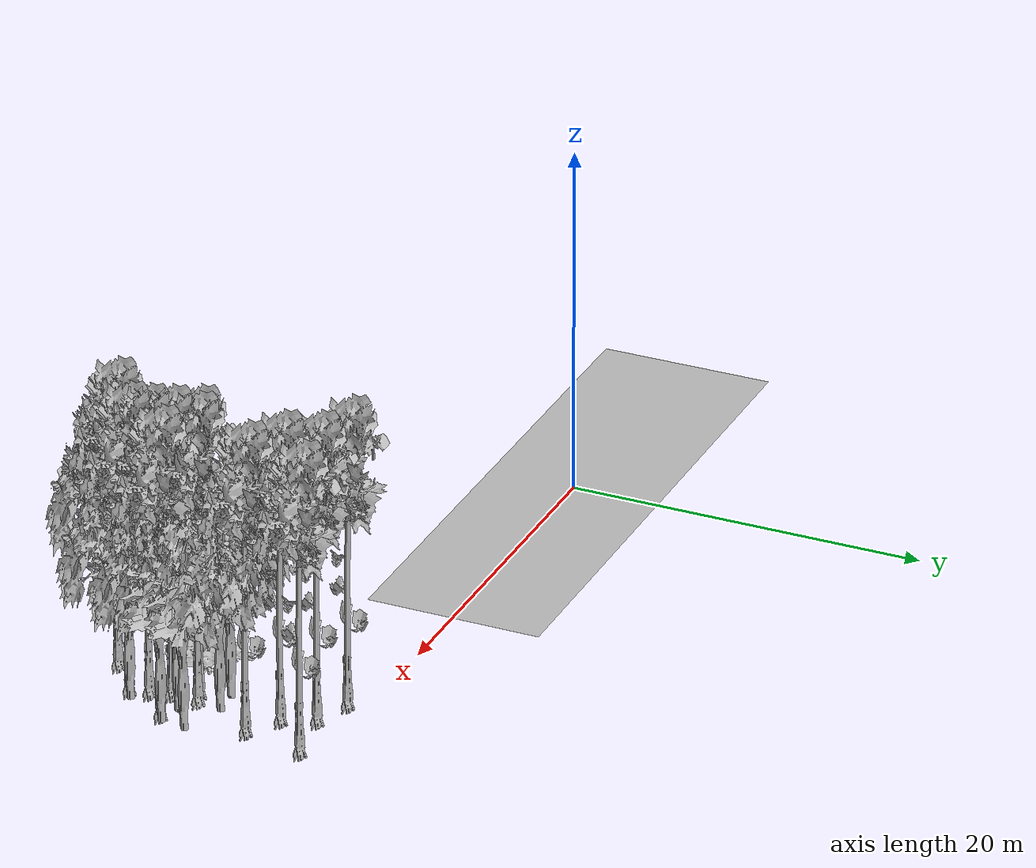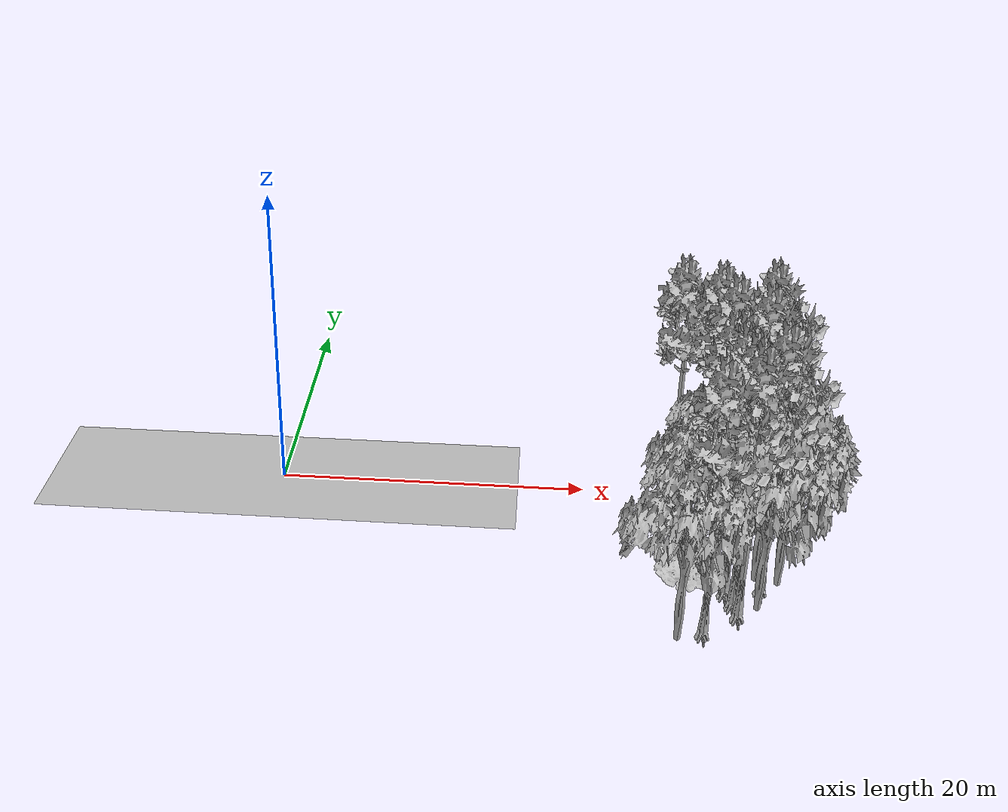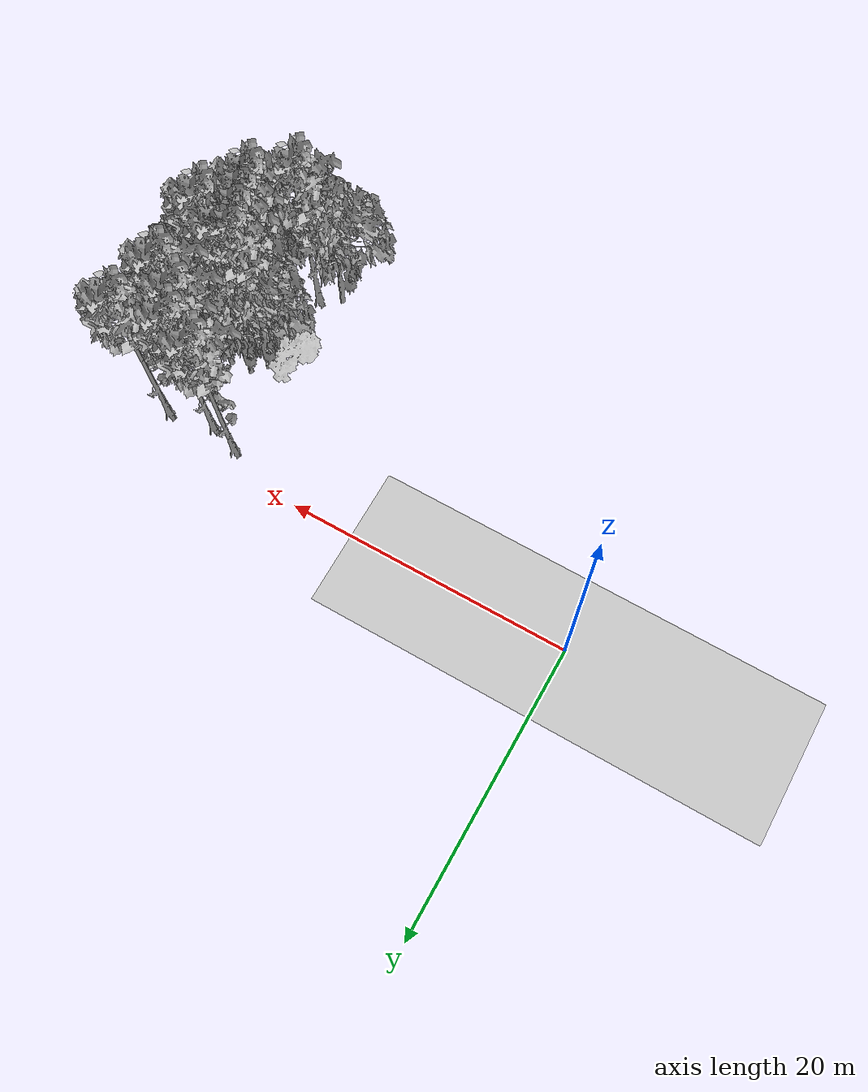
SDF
<sdf version="1.7">
 <world name="default">
  <model name="ground_plane">
   <static>1</static>
   <link name="link">
    <collision name="collision">
     <pose>-50 0 0 0 -0 0</pose>
     <geometry><plane><normal>0 0 1</normal><size>100 100</size></plane></geometry>
     <surface><contact><ode><min_depth>0.01</min_depth><max_vel>0</max_vel></ode></contact></surface>
    </collision>
    <visual name="grass">
     <cast_shadows>0</cast_shadows>
     <geometry>
      <mesh>
       <scale>0.5814285714285714 0.18142857142857144 0.1</scale>
       <uri>file://grass_plane/meshes/grass_plane.dae</uri>
      </mesh>
     </geometry>
    </visual>
   </link>
  </model>
  <model name="Tree 3">
   <static>1</static>
   <pose>28.816578307401187 -12.275336711005055 0 1.57079 -0 0</pose>
   <link name="link">
    <collision name="collision">
     <geometry><mesh><scale>3.5 5 3.5</scale><uri>model://tree_9/meshes/tree_9.obj</uri></mesh></geometry>
    </collision>
    <visual name="visual">
     <geometry><mesh><scale>3.5 5 3.5</scale><uri>model://tree_9/meshes/tree_9.obj</uri></mesh></geometry>
    </visual>
   </link>
  </model>
  <model name="Tree 67">
   <static>1</static>
   <pose>25.736149651739538 -9.30305322715385 0 1.57079 -0 0</pose>
   <link name="link">
    <collision name="collision">
     <geometry><mesh><scale>4 2.5 4</scale><uri>model://tree_1/meshes/tree_1.obj</uri></mesh></geometry>
    </collision>
    <visual name="visual">
     <geometry><mesh><scale>4 2.5 4</scale><uri>model://tree_1/meshes/tree_1.obj</uri></mesh></geometry>
    </visual>
   </link>
  </model>
  <model name="Tree 99">
   <static>1</static>
   <pose>27.711229154028274 -2.124093726607624 0 1.57079 -0 0</pose>
   <link name="link">
    <collision name="collision">
     <geometry><mesh><scale>3.5 5 3.5</scale><uri>model://tree_9/meshes/tree_9.obj</uri></mesh></geometry>
    </collision>
    <visual name="visual">
     <geometry><mesh><scale>3.5 5 3.5</scale><uri>model://tree_9/meshes/tree_9.obj</uri></mesh></geometry>
    </visual>
   </link>
  </model>
  <model name="Tree 140">
   <static>1</static>
   <pose>25.594275652812357 -1.39752343995983 0 1.57079 -0 0</pose>
   <link name="link">
    <collision name="collision">
     <geometry><mesh><scale>3.5 5 3.5</scale><uri>model://tree_9/meshes/tree_9.obj</uri></mesh></geometry>
    </collision>
    <visual name="visual">
     <geometry><mesh><scale>3.5 5 3.5</scale><uri>model://tree_9/meshes/tree_9.obj</uri></mesh></geometry>
    </visual>
   </link>
  </model>
  <model name="Tree 184">
   <static>1</static>
   <pose>25.086450924936756 -14.716954587017216 0 1.57079 -0 0</pose>
   <link name="link">
    <collision name="collision">
     <geometry><mesh><scale>3.5 5 3.5</scale><uri>model://tree_2/meshes/tree_2.obj</uri></mesh></geometry>
    </collision>
    <visual name="visual">
     <geometry><mesh><scale>3.5 5 3.5</scale><uri>model://tree_2/meshes/tree_2.obj</uri></mesh></geometry>
    </visual>
   </link>
  </model>
  <model name="Tree 205">
   <static>1</static>
   <pose>31.391043474435094 -9.125467354164403 0 1.57079 -0 0</pose>
   <link name="link">
    <collision name="collision">
     <geometry><mesh><scale>3.5 5 3.5</scale><uri>model://tree_2/meshes/tree_2.obj</uri></mesh></geometry>
    </collision>
    <visual name="visual">
     <geometry><mesh><scale>3.5 5 3.5</scale><uri>model://tree_2/meshes/tree_2.obj</uri></mesh></geometry>
    </visual>
   </link>
  </model>
  <model name="Tree 215">
   <static>1</static>
   <pose>26.874081245217113 -7.8629637072046075 0 1.57079 -0 0</pose>
   <link name="link">
    <collision name="collision">
     <geometry><mesh><scale>3.5 5 3.5</scale><uri>model://tree_2/meshes/tree_2.obj</uri></mesh></geometry>
    </collision>
    <visual name="visual">
     <geometry><mesh><scale>3.5 5 3.5</scale><uri>model://tree_2/meshes/tree_2.obj</uri></mesh></geometry>
    </visual>
   </link>
  </model>
  <model name="Tree 234">
   <static>1</static>
   <pose>27.707507237580117 -6.956825210854053 0 1.57079 -0 0</pose>
   <link name="link">
    <collision name="collision">
     <geometry><mesh><scale>3.5 5 3.5</scale><uri>model://tree_2/meshes/tree_2.obj</uri></mesh></geometry>
    </collision>
    <visual name="visual">
     <geometry><mesh><scale>3.5 5 3.5</scale><uri>model://tree_2/meshes/tree_2.obj</uri></mesh></geometry>
    </visual>
   </link>
  </model>
  <model name="Tree 244">
   <static>1</static>
   <pose>29.920235837777838 -11.625635448905513 0 1.57079 -0 0</pose>
   <link name="link">
    <collision name="collision">
     <geometry><mesh><scale>3.5 5 3.5</scale><uri>model://tree_2/meshes/tree_2.obj</uri></mesh></geometry>
    </collision>
    <visual name="visual">
     <geometry><mesh><scale>3.5 5 3.5</scale><uri>model://tree_2/meshes/tree_2.obj</uri></mesh></geometry>
    </visual>
   </link>
  </model>
  <model name="Tree 271">
   <static>1</static>
   <pose>26.68233944444539 -13.991900319622339 0 1.57079 -0 0</pose>
   <link name="link">
    <collision name="collision">
     <geometry><mesh><scale>3.5 5 3.5</scale><uri>model://tree_9/meshes/tree_9.obj</uri></mesh></geometry>
    </collision>
    <visual name="visual">
     <geometry><mesh><scale>3.5 5 3.5</scale><uri>model://tree_9/meshes/tree_9.obj</uri></mesh></geometry>
    </visual>
   </link>
  </model>
  <model name="Tree 286">
   <static>1</static>
   <pose>28.419393628340686 -3.851281960244199 0 1.57079 -0 0</pose>
   <link name="link">
    <collision name="collision">
     <geometry><mesh><scale>3.5 5 3.5</scale><uri>model://tree_9/meshes/tree_9.obj</uri></mesh></geometry>
    </collision>
    <visual name="visual">
     <geometry><mesh><scale>3.5 5 3.5</scale><uri>model://tree_9/meshes/tree_9.obj</uri></mesh></geometry>
    </visual>
   </link>
  </model>
  <model name="Tree 293">
   <static>1</static>
   <pose>28.603292815130885 -11.23228290288571 0 1.57079 -0 0</pose>
   <link name="link">
    <collision name="collision">
     <geometry><mesh><scale>3.5 5 3.5</scale><uri>model://tree_9/meshes/tree_9.obj</uri></mesh></geometry>
    </collision>
    <visual name="visual">
     <geometry><mesh><scale>3.5 5 3.5</scale><uri>model://tree_9/meshes/tree_9.obj</uri></mesh></geometry>
    </visual>
   </link>
  </model>
  <model name="Tree 294">
   <static>1</static>
   <pose>31.646947685493984 -7.704206699135845 0 1.57079 -0 0</pose>
   <link name="link">
    <collision name="collision">
     <geometry><mesh><scale>3.5 5 3.5</scale><uri>model://tree_2/meshes/tree_2.obj</uri></mesh></geometry>
    </collision>
    <visual name="visual">
     <geometry><mesh><scale>3.5 5 3.5</scale><uri>model://tree_2/meshes/tree_2.obj</uri></mesh></geometry>
    </visual>
   </link>
  </model>
  <model name="Tree 296">
   <static>1</static>
   <pose>28.347616901197597 -8.576182980243274 0 1.57079 -0 0</pose>
   <link name="link">
    <collision name="collision">
     <geometry><mesh><scale>3.5 5 3.5</scale><uri>model://tree_9/meshes/tree_9.obj</uri></mesh></geometry>
    </collision>
    <visual name="visual">
     <geometry><mesh><scale>3.5 5 3.5</scale><uri>model://tree_9/meshes/tree_9.obj</uri></mesh></geometry>
    </visual>
   </link>
  </model>
  <model name="Tree 354">
   <static>1</static>
   <pose>29.016192686900595 -9.343375268856454 0 1.57079 -0 0</pose>
   <link name="link">
    <collision name="collision">
     <geometry><mesh><scale>3.5 5 3.5</scale><uri>model://tree_2/meshes/tree_2.obj</uri></mesh></geometry>
    </collision>
    <visual name="visual">
     <geometry><mesh><scale>3.5 5 3.5</scale><uri>model://tree_2/meshes/tree_2.obj</uri></mesh></geometry>
    </visual>
   </link>
  </model>
  <model name="Tree 355">
   <static>1</static>
   <pose>30.089120059657645 -8.79812293140795 0 1.57079 -0 0</pose>
   <link name="link">
    <collision name="collision">
     <geometry><mesh><scale>3.5 5 3.5</scale><uri>model://tree_2/meshes/tree_2.obj</uri></mesh></geometry>
    </collision>
    <visual name="visual">
     <geometry><mesh><scale>3.5 5 3.5</scale><uri>model://tree_2/meshes/tree_2.obj</uri></mesh></geometry>
    </visual>
   </link>
  </model>
  <model name="Tree 373">
   <static>1</static>
   <pose>30.438054954845626 -9.684399115596644 0 1.57079 -0 0</pose>
   <link name="link">
    <collision name="collision">
     <geometry><mesh><scale>3.5 5 3.5</scale><uri>model://tree_9/meshes/tree_9.obj</uri></mesh></geometry>
    </collision>
    <visual name="visual">
     <geometry><mesh><scale>3.5 5 3.5</scale><uri>model://tree_9/meshes/tree_9.obj</uri></mesh></geometry>
    </visual>
   </link>
  </model>
  <model name="Tree 381">
   <static>1</static>
   <pose>30.911854598363817 -1.5792556463295746 0 1.57079 -0 0</pose>
   <link name="link">
    <collision name="collision">
     <geometry><mesh><scale>3.5 5 3.5</scale><uri>model://tree_9/meshes/tree_9.obj</uri></mesh></geometry>
    </collision>
    <visual name="visual">
     <geometry><mesh><scale>3.5 5 3.5</scale><uri>model://tree_9/meshes/tree_9.obj</uri></mesh></geometry>
    </visual>
   </link>
  </model>
  <model name="Tree 435">
   <static>1</static>
   <pose>29.19373509572742 -6.849587322284261 0 1.57079 -0 0</pose>
   <link name="link">
    <collision name="collision">
     <geometry><mesh><scale>3.5 5 3.5</scale><uri>model://tree_2/meshes/tree_2.obj</uri></mesh></geometry>
    </collision>
    <visual name="visual">
     <geometry><mesh><scale>3.5 5 3.5</scale><uri>model://tree_2/meshes/tree_2.obj</uri></mesh></geometry>
    </visual>
   </link>
  </model>
  <model name="Tree 436">
   <static>1</static>
   <pose>28.26441066495495 -10.12233804593762 0 1.57079 -0 0</pose>
   <link name="link">
    <collision name="collision">
     <geometry><mesh><scale>3.5 5 3.5</scale><uri>model://tree_9/meshes/tree_9.obj</uri></mesh></geometry>
    </collision>
    <visual name="visual">
     <geometry><mesh><scale>3.5 5 3.5</scale><uri>model://tree_9/meshes/tree_9.obj</uri></mesh></geometry>
    </visual>
   </link>
  </model>
  <model name="Tree 445">
   <static>1</static>
   <pose>27.694541050375662 -8.796643810399399 0 1.57079 -0 0</pose>
   <link name="link">
    <collision name="collision">
     <geometry><mesh><scale>3.5 5 3.5</scale><uri>model://tree_9/meshes/tree_9.obj</uri></mesh></geometry>
    </collision>
    <visual name="visual">
     <geometry><mesh><scale>3.5 5 3.5</scale><uri>model://tree_9/meshes/tree_9.obj</uri></mesh></geometry>
    </visual>
   </link>
  </model>
  <model name="Tree 475">
   <static>1</static>
   <pose>30.18546114851158 -4.974117821955527 0 1.57079 -0 0</pose>
   <link name="link">
    <collision name="collision">
     <geometry><mesh><scale>3.5 5 3.5</scale><uri>model://tree_9/meshes/tree_9.obj</uri></mesh></geometry>
    </collision>
    <visual name="visual">
     <geometry><mesh><scale>3.5 5 3.5</scale><uri>model://tree_9/meshes/tree_9.obj</uri></mesh></geometry>
    </visual>
   </link>
  </model>
 </world>
</sdf>
